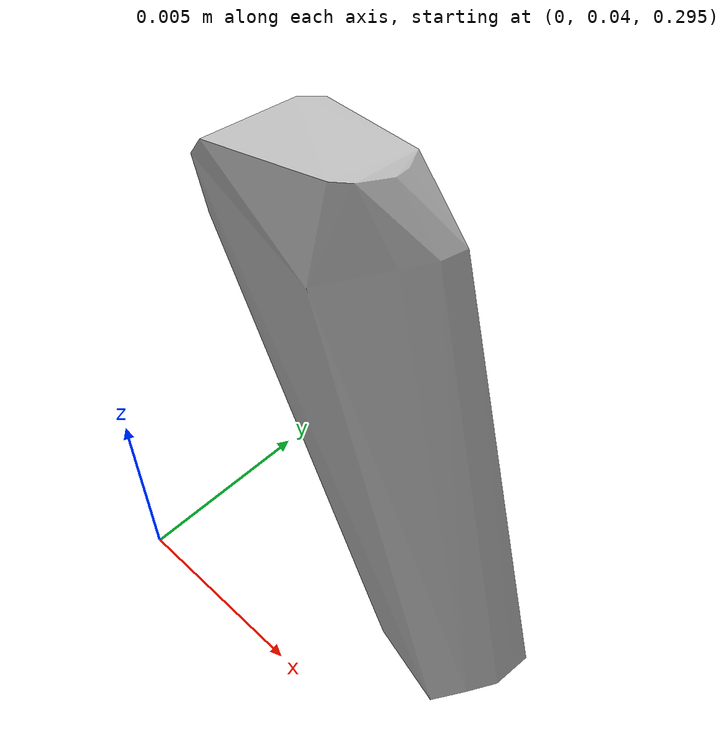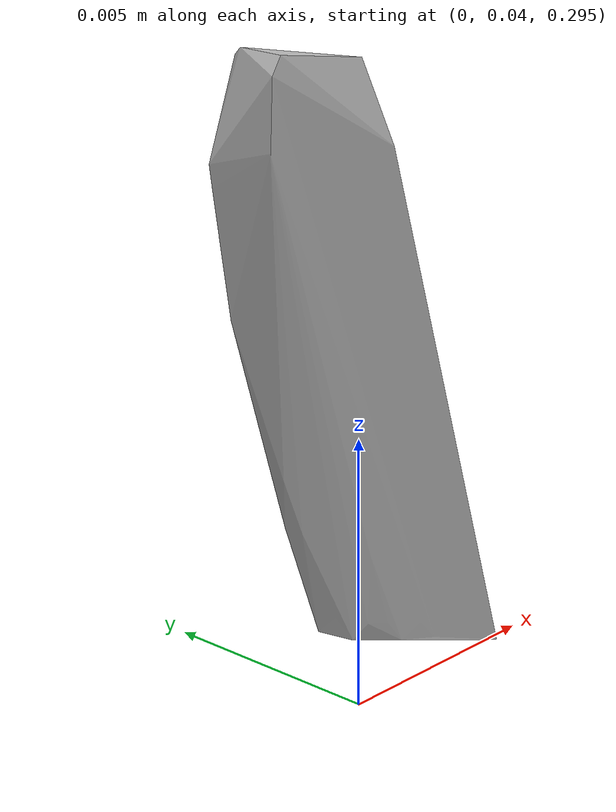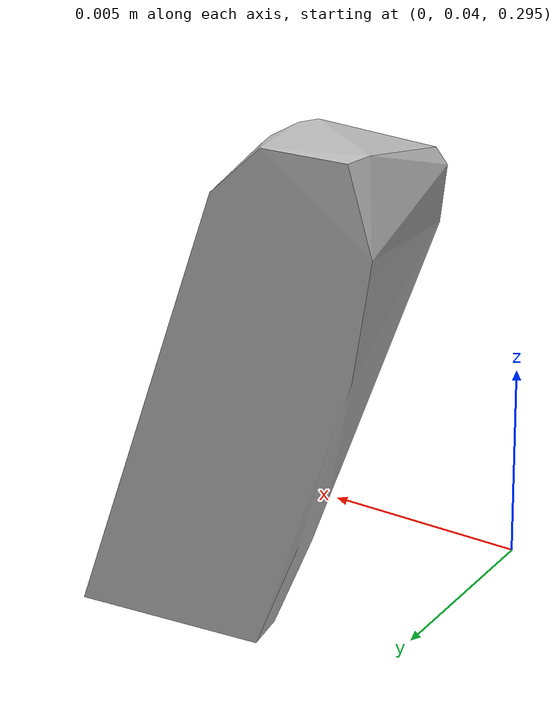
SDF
<?xml version="1.0"?>
<sdf version="1.7">
  <model name="vascular_partexport011">
    <link name="vascular_partexport011_body">
      <visual name="vascular_partexport011_visual">
        <geometry>
          <mesh>
            <uri>vascular_partexport011.obj</uri>
          </mesh>
        </geometry>
      </visual>
      <collision name="vascular_partexport011_collision">
        <geometry>
          <mesh>
            <uri>vascular_partexport011.obj</uri>
          </mesh>
        </geometry>
      </collision>
    </link>
    <frame name="vascular_partexport011_center">
      <pose relative_to="vascular_partexport011_body">0 0 0 0 0 0</pose>
    </frame>
  </model>
</sdf>
